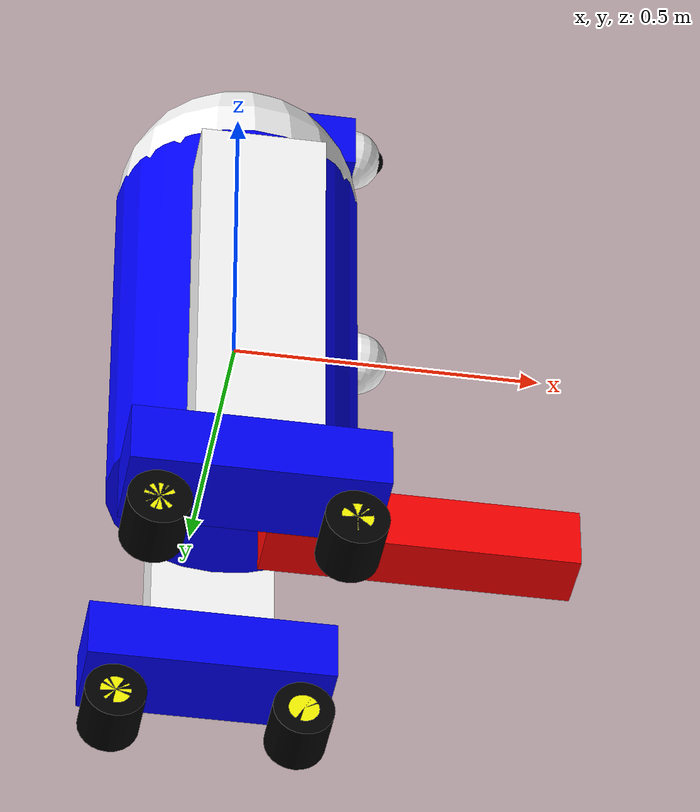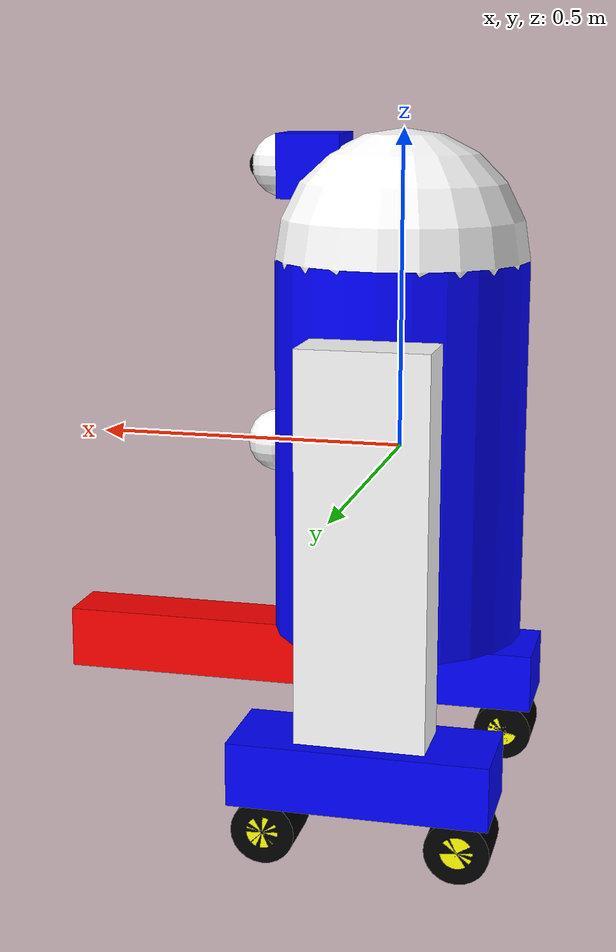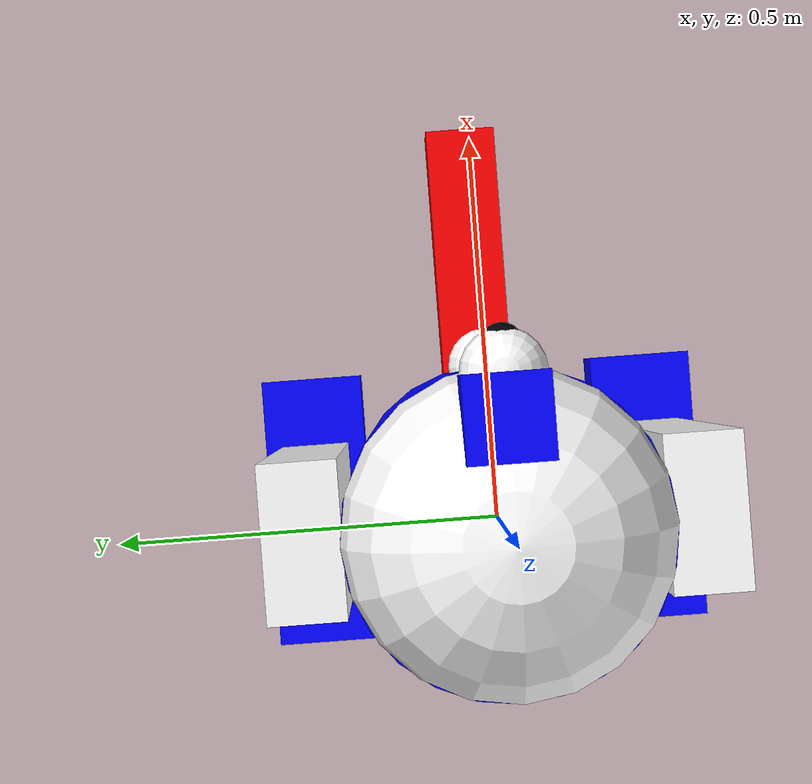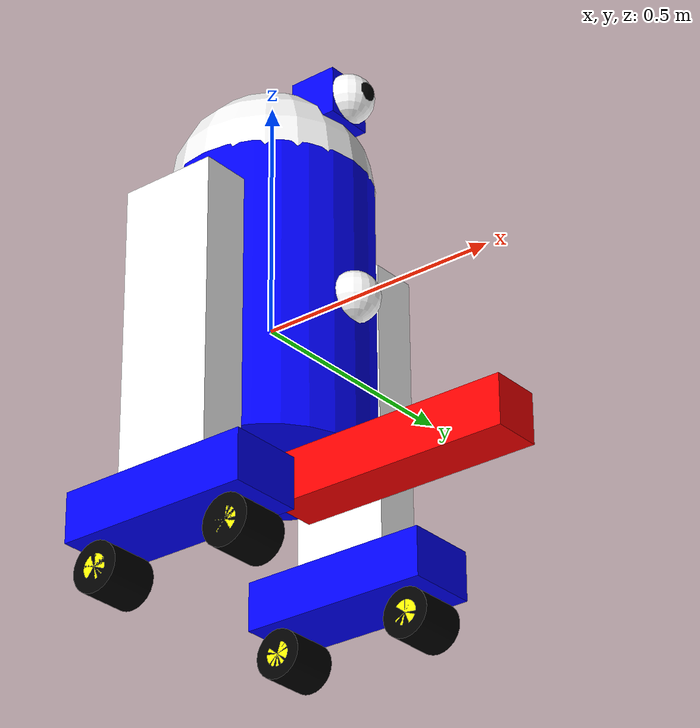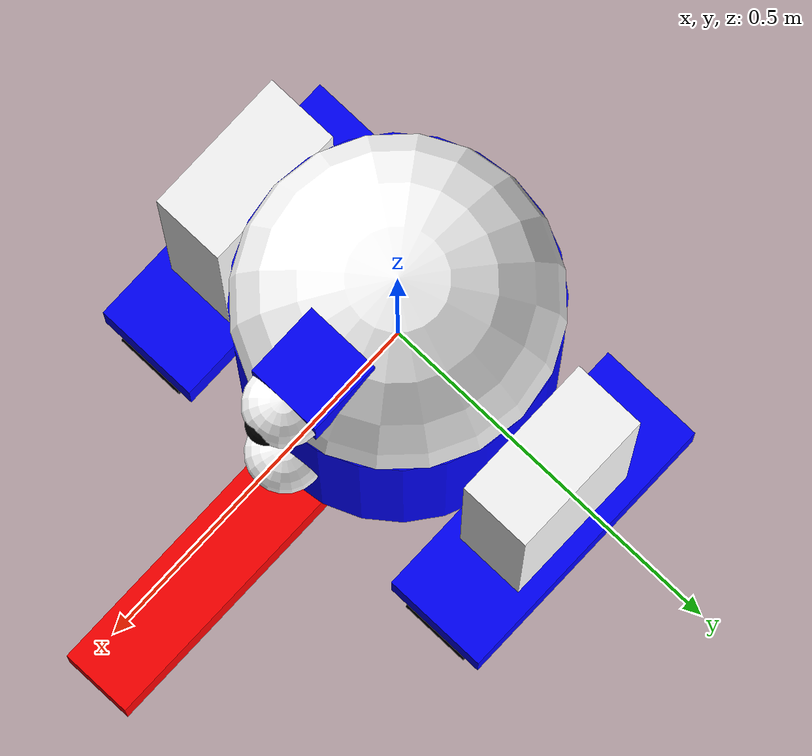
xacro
<?xml version="1.0"?>
<robot xmlns:xacro="http://www.ros.org/wiki/xacro" name="chitti_vtwo">

    <xacro:include filename="materials.xacro"/>
    <xacro:include filename="properties.xacro"/>
    <xacro:include filename="robot_macros.xacro"/>
    <xacro:include filename="gazebo.xacro"/>

    <link name="base_link">
        <xacro:default_inertial mass="${base_mass}"/>
        <visual>
            <geometry>
                <cylinder radius="0.2" length="0.6" />
            </geometry>
            <material name="blue"/>
        </visual>
        <collision>
            <geometry>
                <cylinder radius="0.2" length="0.6" />
            </geometry>
        </collision>
    </link>

    <link name="catch">
        <xacro:default_inertial mass="${base_mass}"/>
        <visual>
            <geometry>
                <box size="0.5 0.1 0.1" />
            </geometry>
            <material name="red"/>
        </visual>
        <collision name = "busted">
            <geometry>
                <box size="0.6 0.1 0.1" />
            </geometry>
        </collision>
    </link>
    <joint name="catch_joint" type="fixed">
        <parent link="base_link"/>
        <child link="catch"/>
        <origin rpy="0 0 0" xyz="0.3 0 -0.35"/>
    </joint>

    <link name="pols_camera">
        <xacro:default_inertial mass="${eyeball_mass}"/>
        <visual>
            <geometry>
                <sphere radius="${head_radius/4}" />
            </geometry>
            <material name="white" />
        </visual>
        <collision>
            <geometry>
                <sphere radius="${head_radius/4}" />
            </geometry>
        </collision>
    </link>
    <joint name="ceye_joint" type="fixed">
        <parent link="base_link"/>
        <child link="pols_camera"/>
        <origin rpy="0 0 0" xyz="0.2 0 0"/>
    </joint>

    <xacro:leg_assembly prefix="l" y_offset="-0.25"/>
    <xacro:leg_assembly prefix="r" y_offset="0.25"/>

    <xacro:wheel name="wheel1" parent_link="pad_l" x_offset="0.15"/>
    <xacro:wheel name="wheel2" parent_link="pad_l" x_offset="-0.15"/>

    <xacro:wheel name="wheel3" parent_link="pad_r" x_offset="-0.15"/>
    <xacro:wheel name="wheel4" parent_link="pad_r" x_offset="0.15"/>

    <xacro:head_assembly />

</robot>

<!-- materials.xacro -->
<robot xmlns:xacro="http://www.ros.org/wiki/xacro">
    <material name="blue">
                <color rgba="0 0 1 1"/>
    </material>
    <material name="white">
                <color rgba="1 1 1 1"/>
    </material>
    <material name="black">
                <color rgba="0 0 0 1"/>
    </material>
    <material name="black_2">
                <color rgba="0 0 0 0.9"/>
    </material>
    <material name="yellow">
                <color rgba="1 1 0 1"/>
    </material>
    <material name="red">
                <color rgba="1 0 0 1"/>
    </material>
</robot>

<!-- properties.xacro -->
<robot xmlns:xacro="http://www.ros.org/wiki/xacro">

    <xacro:property name="PI" value="3.14159265359"/>
    <xacro:property name="elimit" value="100.0"/>
    <xacro:property name="vlimit" value="3.14"/>

    <xacro:property name="leg_length" value="0.6"/>
    <xacro:property name="leg_width" value="0.1"/>
    <xacro:property name="leg_height" value="0.2"/>

    <xacro:property name="pad_length" value="0.4"/>
    <xacro:property name="pad_width" value="0.15"/>
    <xacro:property name="pad_height" value="0.1"/>

    <xacro:property name="wheel_radius" value="0.05"/>
    <xacro:property name="wheel_length" value="0.1"/>

    <xacro:property name="head_radius" value="0.2"/>

    <xacro:property name="base_mass" value="1.0"/>
    <xacro:property name="leg_mass" value="1.0"/>
    <xacro:property name="pad_mass" value="5.0"/>
    <xacro:property name="wheel_mass" value="3.0"/>
    <xacro:property name="iwheel_mass" value="2.0"/>
    <xacro:property name="head_mass" value="0.5"/>
    <xacro:property name="eye_socket_mass" value="0.1"/>
    <xacro:property name="eyeball_mass" value="0.05"/>
    <xacro:property name="pupil_mass" value="0.01"/>

</robot>

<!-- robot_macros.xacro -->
<robot xmlns:xacro="http://www.ros.org/wiki/xacro">

    <xacro:macro name="default_inertial" params="mass">
        <inertial>
            <mass value="${mass}"/>

            <origin xyz="0 0 0" rpy="0 0 0"/>

            <inertia
                ixx="${mass*0.001}"
                ixy="0"
                ixz="0"
                iyy="${mass*0.001}"
                iyz="0"
                izz="${mass*0.001}"/>
        </inertial>
    </xacro:macro>

    <xacro:macro name="leg_assembly" params="prefix y_offset">

        <link name="leg_${prefix}">
            <xacro:default_inertial mass="${leg_mass}"/>
            <visual>
                <geometry>
                    <box size="${leg_length} ${leg_width} ${leg_height}"/>
                </geometry>
                <material name="white" />
            </visual>
            <collision>
                <geometry>
                    <box size="${leg_length} ${leg_width} ${leg_height}"/>
                </geometry>
            </collision>
        </link>
        <joint name="leg_joint_${prefix}" type="fixed">
            <parent link="base_link" />
            <child link="leg_${prefix}" />
            <origin rpy="0 ${PI/2} 0" xyz="0 ${y_offset} -0.1"/>
        </joint>

        <link name="pad_${prefix}">
            <xacro:default_inertial mass="${pad_mass}"/>
            <visual>
                <geometry>
                    <box size="${pad_length} ${pad_width} ${pad_height}"/>
                </geometry>
                <material name="blue" />
            </visual>
            <collision>
                <geometry>
                    <box size="${pad_length} ${pad_width} ${pad_height}"/>
                </geometry>
            </collision>
        </link>
        <joint name="pad_joint_${prefix}" type="fixed">
            <parent link="leg_${prefix}" />
            <child link="pad_${prefix}" />
            <origin rpy="0 ${-PI/2} 0" xyz="0.35 0 0"/>
        </joint>

    </xacro:macro>

    <xacro:macro name="wheel" params="name parent_link x_offset add_inner_wheel:=true">

        <link name="${name}">
            <xacro:default_inertial mass="${wheel_mass}"/>
            <visual>
                <geometry>
                    <cylinder radius="${wheel_radius}" length="${wheel_length}"  />
                </geometry>
                <material name="black_2" />
            </visual>
            <collision>
                <geometry>
                    <cylinder radius="${wheel_radius}" length="${wheel_length}"  />
                </geometry>
            </collision>
        </link>
        <joint name="${name}_joint" type="continuous">
            <parent link="${parent_link}" />
            <child link="${name}" />
            <origin rpy="${PI/2} 0 0" xyz="${x_offset} 0 -0.1"/>
            <axis xyz="0 0 -1"/>
        </joint>

        <xacro:if value="${add_inner_wheel}">
            <link name="i${name}">
                <xacro:default_inertial mass="${iwheel_mass}"/>
                <visual>
                    <geometry>
                        <cylinder radius="${wheel_radius/2}" length="${wheel_length}" />
                    </geometry>
                    <material name="yellow" />
                </visual>
                <collision>
                    <geometry>
                        <cylinder radius="${wheel_radius/2}" length="${wheel_length}" />
                    </geometry>
                </collision>
            </link>
            <joint name="i${name}_joint" type="fixed">
                <parent link="${name}" />
                <child link="i${name}" />
                <origin rpy="0 0 0" xyz="0 0 0"/>
            </joint>
        </xacro:if>

    </xacro:macro>

    <xacro:macro name="head_assembly">

        <link name="head">
            <xacro:default_inertial mass="${head_mass}"/>
            <visual>
                <geometry>
                    <sphere radius="${head_radius}"/>
                </geometry>
                <material name="white" />
            </visual>
            <collision>
                <geometry>
                    <sphere radius="${head_radius}"/>
                </geometry>
            </collision>
        </link>
        <joint name="head_joint1" type="continuous">
            <parent link="base_link" />
            <child link="head" />
            <origin rpy="0 0 0" xyz="0 0 0.3"/>
            <axis xyz="0 0 1"/>
        </joint>

        <link name="eye_socket">
            <xacro:default_inertial mass="${eye_socket_mass}"/>
            <visual>
                <geometry>
                    <box size="${head_radius/2} ${head_radius/2} ${head_radius/2}"/>
                </geometry>
                <material name="blue" />
            </visual>
            <collision>
                <geometry>
                    <box size="${head_radius/2} ${head_radius/2} ${head_radius/2}"/>
                </geometry>
            </collision>
        </link>
        <joint name="eye_joint" type="fixed">
            <parent link="head"/>
            <child link="eye_socket"/>
            <origin rpy="0 0 0" xyz="0.1414 0 0.1414"/>
        </joint>

        <link name="eyeball">
            <xacro:default_inertial mass="${eyeball_mass}"/>
            <visual>
                <geometry>
                    <sphere radius="${head_radius/4}" />
                </geometry>
                <material name="white" />
            </visual>
            <collision>
                <geometry>
                    <sphere radius="${head_radius/4}" />
                </geometry>
            </collision>
        </link>
        <joint name="ieye_joint" type="revolute">
            <parent link="eye_socket"/>
            <child link="eyeball"/>
            <origin rpy="0 0 0" xyz="0.05 0 0"/>
            <axis xyz="0 1 0"/>
            <limit lower="${-PI/2}" upper="${PI/2}" effort="100.0" velocity="3.14"/>
        </joint>

        <link name="pupil">
            <xacro:default_inertial mass="${pupil_mass}"/>
            <visual>
                <geometry>
                    <sphere radius="${head_radius/8}" />
                </geometry>
                <material name="black" />
            </visual>
            <collision>
                <geometry>
                    <sphere radius="${head_radius/8}" />
                </geometry>
            </collision>
        </link>
        <joint name="pupil_joint" type="fixed">
            <parent link="eyeball"/>
            <child link="pupil"/>
            <origin rpy="0 0 0" xyz="0.03 0 0"/>
        </joint>
    </xacro:macro>

</robot>
